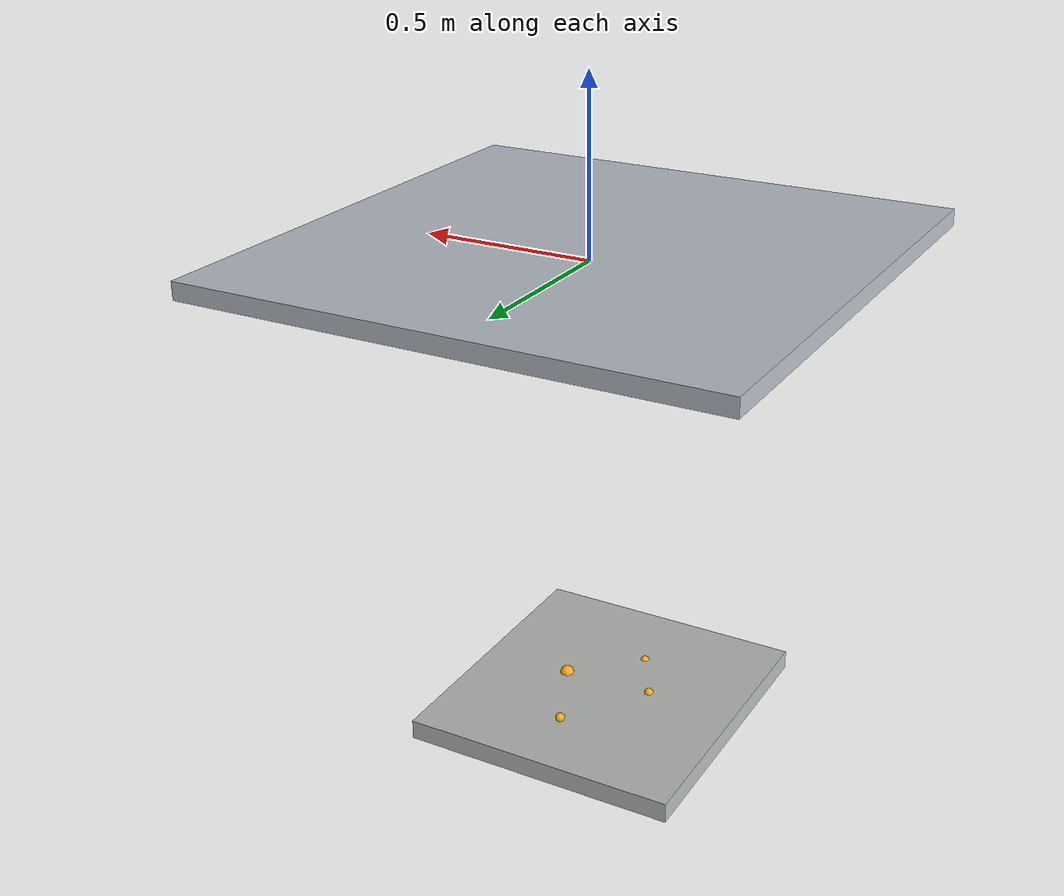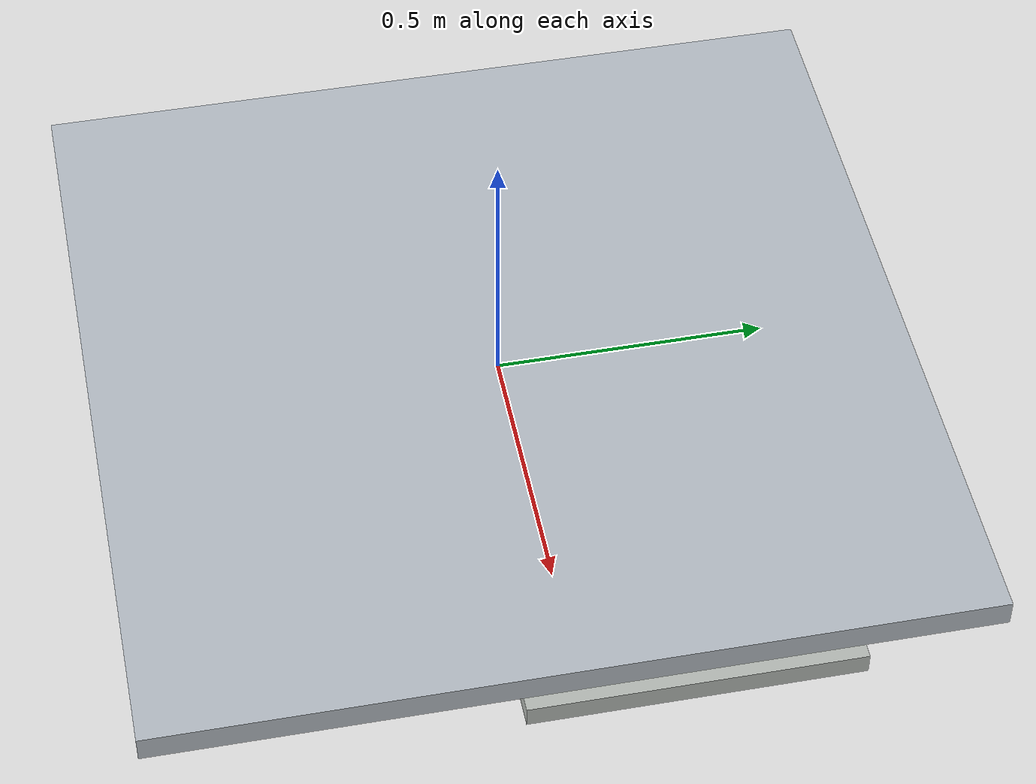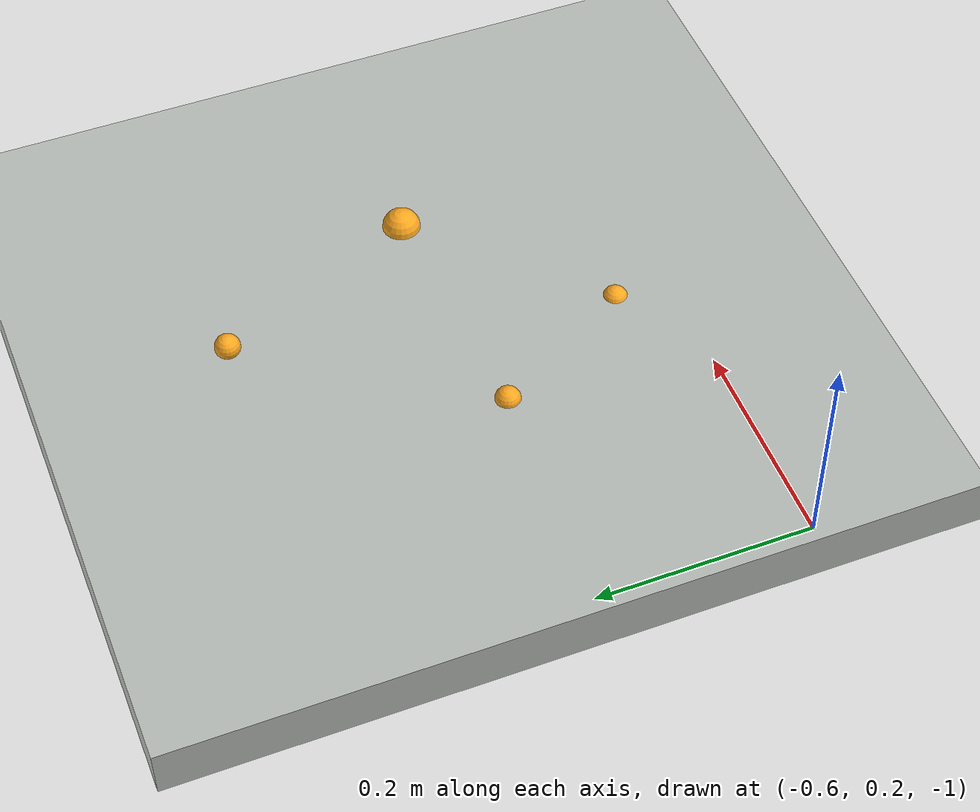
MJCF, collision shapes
<mujoco model="ceiling_ur5e_hande_estimated_table">
  <compiler angle="radian" coordinate="local" autolimits="true" />
  <option timestep="0.002" gravity="0 0 -9.81" />
  <visual>
    <headlight ambient="0.55 0.55 0.55" diffuse="0.45 0.45 0.45" specular="0.12 0.12 0.12" />
    <rgba haze="1 1 1 1" />
  </visual>
  <statistic center="-0.271848 0.414837 -0.492721" extent="1.8" />
  <asset>
    <texture name="white_skybox" type="skybox" builtin="flat" rgb1="1 1 1" rgb2="1 1 1" width="32" height="32" />
    <material name="ceiling_mat" rgba="0.720000 0.750000 0.780000 1.000000" />
    <material name="table_mat" rgba="0.720000 0.740000 0.720000 1.000000" />
    <material name="robot_mat" rgba="0.220000 0.350000 0.620000 1.000000" />
    <material name="joint_mat" rgba="0.080000 0.100000 0.120000 1.000000" />
    <material name="hande_mat" rgba="0.080000 0.080000 0.080000 1.000000" />
    <material name="hande_body_mat" rgba="0.090000 0.100000 0.110000 1.000000" />
    <material name="hande_finger_mat" rgba="0.180000 0.180000 0.170000 1.000000" />
    <material name="hande_metal_mat" rgba="0.580000 0.600000 0.620000 1.000000" />
    <material name="contact_mat" rgba="1.000000 0.660000 0.120000 1.000000" />
    <material name="tray_mat" rgba="0.000000 0.580000 0.220000 1.000000" />
    <mesh name="ti_tray_part_00" file="../assets/ti_tray/mujoco_parts/ti_tray_part_00.obj" inertia="shell" />
    <mesh name="ti_tray_part_01" file="../assets/ti_tray/mujoco_parts/ti_tray_part_01.obj" inertia="shell" />
    <mesh name="ti_tray_part_02" file="../assets/ti_tray/mujoco_parts/ti_tray_part_02.obj" inertia="shell" />
    <mesh name="ti_tray_part_03" file="../assets/ti_tray/mujoco_parts/ti_tray_part_03.obj" inertia="shell" />
    <mesh name="ti_tray_part_04" file="../assets/ti_tray/mujoco_parts/ti_tray_part_04.obj" inertia="shell" />
    <mesh name="ti_tray_part_05" file="../assets/ti_tray/mujoco_parts/ti_tray_part_05.obj" inertia="shell" />
    <mesh name="ti_tray_part_06" file="../assets/ti_tray/mujoco_parts/ti_tray_part_06.obj" inertia="shell" />
    <mesh name="ti_tray_part_07" file="../assets/ti_tray/mujoco_parts/ti_tray_part_07.obj" inertia="shell" />
    <mesh name="ti_tray_part_08" file="../assets/ti_tray/mujoco_parts/ti_tray_part_08.obj" inertia="shell" />
    <mesh name="ti_tray_part_09" file="../assets/ti_tray/mujoco_parts/ti_tray_part_09.obj" inertia="shell" />
    <mesh name="ti_tray_part_10" file="../assets/ti_tray/mujoco_parts/ti_tray_part_10.obj" inertia="shell" />
    <mesh name="ti_tray_part_11" file="../assets/ti_tray/mujoco_parts/ti_tray_part_11.obj" inertia="shell" />
    <mesh name="ti_tray_part_12" file="../assets/ti_tray/mujoco_parts/ti_tray_part_12.obj" inertia="shell" />
    <mesh name="ti_tray_part_13" file="../assets/ti_tray/mujoco_parts/ti_tray_part_13.obj" inertia="shell" />
    <mesh name="ti_tray_part_14" file="../assets/ti_tray/mujoco_parts/ti_tray_part_14.obj" inertia="shell" />
    <mesh name="ti_tray_part_15" file="../assets/ti_tray/mujoco_parts/ti_tray_part_15.obj" inertia="shell" />
    <mesh name="ti_tray_part_16" file="../assets/ti_tray/mujoco_parts/ti_tray_part_16.obj" inertia="shell" />
    <mesh name="ti_tray_part_17" file="../assets/ti_tray/mujoco_parts/ti_tray_part_17.obj" inertia="shell" />
    <mesh name="ti_tray_part_18" file="../assets/ti_tray/mujoco_parts/ti_tray_part_18.obj" inertia="shell" />
    <mesh name="ti_tray_part_19" file="../assets/ti_tray/mujoco_parts/ti_tray_part_19.obj" inertia="shell" />
    <mesh name="ti_tray_part_20" file="../assets/ti_tray/mujoco_parts/ti_tray_part_20.obj" inertia="shell" />
    <mesh name="ti_tray_part_21" file="../assets/ti_tray/mujoco_parts/ti_tray_part_21.obj" inertia="shell" />
    <mesh name="ti_tray_part_22" file="../assets/ti_tray/mujoco_parts/ti_tray_part_22.obj" inertia="shell" />
    <mesh name="ti_tray_part_23" file="../assets/ti_tray/mujoco_parts/ti_tray_part_23.obj" inertia="shell" />
    <mesh name="ti_tray_part_24" file="../assets/ti_tray/mujoco_parts/ti_tray_part_24.obj" inertia="shell" />
    <mesh name="hande_io_coupler" file="../assets/robotiq_hande_description/meshes/io_coupler.obj" />
    <mesh name="hande_body" file="../assets/robotiq_hande_description/meshes/hande.obj" />
    <mesh name="hande_finger" file="../assets/robotiq_hande_description/meshes/finger.obj" />
    <material name="black" rgba="0.033000 0.033000 0.033000 1.000000" />
    <material name="jointgray" rgba="0.278000 0.278000 0.278000 1.000000" />
    <material name="linkgray" rgba="0.820000 0.820000 0.820000 1.000000" />
    <material name="urblue" rgba="0.490000 0.678000 0.800000 1.000000" />
    <mesh name="base_0" file="../assets/universal_robots_ur5e/assets/base_0.obj" />
    <mesh name="base_1" file="../assets/universal_robots_ur5e/assets/base_1.obj" />
    <mesh name="shoulder_0" file="../assets/universal_robots_ur5e/assets/shoulder_0.obj" />
    <mesh name="shoulder_1" file="../assets/universal_robots_ur5e/assets/shoulder_1.obj" />
    <mesh name="shoulder_2" file="../assets/universal_robots_ur5e/assets/shoulder_2.obj" />
    <mesh name="upperarm_0" file="../assets/universal_robots_ur5e/assets/upperarm_0.obj" />
    <mesh name="upperarm_1" file="../assets/universal_robots_ur5e/assets/upperarm_1.obj" />
    <mesh name="upperarm_2" file="../assets/universal_robots_ur5e/assets/upperarm_2.obj" />
    <mesh name="upperarm_3" file="../assets/universal_robots_ur5e/assets/upperarm_3.obj" />
    <mesh name="forearm_0" file="../assets/universal_robots_ur5e/assets/forearm_0.obj" />
    <mesh name="forearm_1" file="../assets/universal_robots_ur5e/assets/forearm_1.obj" />
    <mesh name="forearm_2" file="../assets/universal_robots_ur5e/assets/forearm_2.obj" />
    <mesh name="forearm_3" file="../assets/universal_robots_ur5e/assets/forearm_3.obj" />
    <mesh name="wrist1_0" file="../assets/universal_robots_ur5e/assets/wrist1_0.obj" />
    <mesh name="wrist1_1" file="../assets/universal_robots_ur5e/assets/wrist1_1.obj" />
    <mesh name="wrist1_2" file="../assets/universal_robots_ur5e/assets/wrist1_2.obj" />
    <mesh name="wrist2_0" file="../assets/universal_robots_ur5e/assets/wrist2_0.obj" />
    <mesh name="wrist2_1" file="../assets/universal_robots_ur5e/assets/wrist2_1.obj" />
    <mesh name="wrist2_2" file="../assets/universal_robots_ur5e/assets/wrist2_2.obj" />
    <mesh name="wrist3" file="../assets/universal_robots_ur5e/assets/wrist3.obj" />
  </asset>
  <worldbody>
    <light name="key" pos="0 -1 1.2" dir="0 1 -1" />
    <camera name="overview" pos="1.2 -1.5 0.6" xyaxes="0.78 0.62 0 -0.24 0.30 0.92" />
    <!--Plane centroid and normals are expressed in MuJoCo world coordinates. The table top uses the fitted centroid but is flattened to the robot-base plane.-->
    <!--centroid=-0.271848 0.414837 -0.985442 fitted_normal=0.001137 -0.028085 0.999605 table_normal=0.000000 0.000000 1.000000 rms_error_m=0.000198791-->
    <geom name="ceiling_panel" type="box" pos="0.000000 0.000000 0.025000" quat="1.000000 0.000000 0.000000 0.000000" size="0.750000 0.750000 0.025000" material="ceiling_mat" contype="0" conaffinity="0" />
    <geom name="ceiling_mount" type="cylinder" pos="0 0 -0.035" size="0.085 0.035" material="joint_mat" contype="0" conaffinity="0" />
    <geom name="estimated_table" type="box" pos="-0.271848 0.414837 -1.010442" quat="1.000000 0.000000 0.000000 0.000000" size="0.350000 0.368783 0.025000" material="table_mat" rgba="0.720000 0.740000 0.720000 1.000000" />
    <geom name="ti_tray_00" type="mesh" mesh="ti_tray_part_00" pos="-0.152840 0.420550 -0.993968" quat="1.000000 0.000000 0.000000 0.000000" material="tray_mat" rgba="0.000000 0.580000 0.220000 1.000000" contype="0" conaffinity="0" />
    <geom name="ti_tray_01" type="mesh" mesh="ti_tray_part_01" pos="-0.152840 0.420550 -0.993968" quat="1.000000 0.000000 0.000000 0.000000" material="tray_mat" rgba="0.000000 0.580000 0.220000 1.000000" contype="0" conaffinity="0" />
    <geom name="ti_tray_02" type="mesh" mesh="ti_tray_part_02" pos="-0.152840 0.420550 -0.993968" quat="1.000000 0.000000 0.000000 0.000000" material="tray_mat" rgba="0.000000 0.580000 0.220000 1.000000" contype="0" conaffinity="0" />
    <geom name="ti_tray_03" type="mesh" mesh="ti_tray_part_03" pos="-0.152840 0.420550 -0.993968" quat="1.000000 0.000000 0.000000 0.000000" material="tray_mat" rgba="0.000000 0.580000 0.220000 1.000000" contype="0" conaffinity="0" />
    <geom name="ti_tray_04" type="mesh" mesh="ti_tray_part_04" pos="-0.152840 0.420550 -0.993968" quat="1.000000 0.000000 0.000000 0.000000" material="tray_mat" rgba="0.000000 0.580000 0.220000 1.000000" contype="0" conaffinity="0" />
    <geom name="ti_tray_05" type="mesh" mesh="ti_tray_part_05" pos="-0.152840 0.420550 -0.993968" quat="1.000000 0.000000 0.000000 0.000000" material="tray_mat" rgba="0.000000 0.580000 0.220000 1.000000" contype="0" conaffinity="0" />
    <geom name="ti_tray_06" type="mesh" mesh="ti_tray_part_06" pos="-0.152840 0.420550 -0.993968" quat="1.000000 0.000000 0.000000 0.000000" material="tray_mat" rgba="0.000000 0.580000 0.220000 1.000000" contype="0" conaffinity="0" />
    <geom name="ti_tray_07" type="mesh" mesh="ti_tray_part_07" pos="-0.152840 0.420550 -0.993968" quat="1.000000 0.000000 0.000000 0.000000" material="tray_mat" rgba="0.000000 0.580000 0.220000 1.000000" contype="0" conaffinity="0" />
    <geom name="ti_tray_08" type="mesh" mesh="ti_tray_part_08" pos="-0.152840 0.420550 -0.993968" quat="1.000000 0.000000 0.000000 0.000000" material="tray_mat" rgba="0.000000 0.580000 0.220000 1.000000" contype="0" conaffinity="0" />
    <geom name="ti_tray_09" type="mesh" mesh="ti_tray_part_09" pos="-0.152840 0.420550 -0.993968" quat="1.000000 0.000000 0.000000 0.000000" material="tray_mat" rgba="0.000000 0.580000 0.220000 1.000000" contype="0" conaffinity="0" />
    <geom name="ti_tray_10" type="mesh" mesh="ti_tray_part_10" pos="-0.152840 0.420550 -0.993968" quat="1.000000 0.000000 0.000000 0.000000" material="tray_mat" rgba="0.000000 0.580000 0.220000 1.000000" contype="0" conaffinity="0" />
    <geom name="ti_tray_11" type="mesh" mesh="ti_tray_part_11" pos="-0.152840 0.420550 -0.993968" quat="1.000000 0.000000 0.000000 0.000000" material="tray_mat" rgba="0.000000 0.580000 0.220000 1.000000" contype="0" conaffinity="0" />
    <geom name="ti_tray_12" type="mesh" mesh="ti_tray_part_12" pos="-0.152840 0.420550 -0.993968" quat="1.000000 0.000000 0.000000 0.000000" material="tray_mat" rgba="0.000000 0.580000 0.220000 1.000000" contype="0" conaffinity="0" />
    <geom name="ti_tray_13" type="mesh" mesh="ti_tray_part_13" pos="-0.152840 0.420550 -0.993968" quat="1.000000 0.000000 0.000000 0.000000" material="tray_mat" rgba="0.000000 0.580000 0.220000 1.000000" contype="0" conaffinity="0" />
    <geom name="ti_tray_14" type="mesh" mesh="ti_tray_part_14" pos="-0.152840 0.420550 -0.993968" quat="1.000000 0.000000 0.000000 0.000000" material="tray_mat" rgba="0.000000 0.580000 0.220000 1.000000" contype="0" conaffinity="0" />
    <geom name="ti_tray_15" type="mesh" mesh="ti_tray_part_15" pos="-0.152840 0.420550 -0.993968" quat="1.000000 0.000000 0.000000 0.000000" material="tray_mat" rgba="0.000000 0.580000 0.220000 1.000000" contype="0" conaffinity="0" />
    <geom name="ti_tray_16" type="mesh" mesh="ti_tray_part_16" pos="-0.152840 0.420550 -0.993968" quat="1.000000 0.000000 0.000000 0.000000" material="tray_mat" rgba="0.000000 0.580000 0.220000 1.000000" contype="0" conaffinity="0" />
    <geom name="ti_tray_17" type="mesh" mesh="ti_tray_part_17" pos="-0.152840 0.420550 -0.993968" quat="1.000000 0.000000 0.000000 0.000000" material="tray_mat" rgba="0.000000 0.580000 0.220000 1.000000" contype="0" conaffinity="0" />
    <geom name="ti_tray_18" type="mesh" mesh="ti_tray_part_18" pos="-0.152840 0.420550 -0.993968" quat="1.000000 0.000000 0.000000 0.000000" material="tray_mat" rgba="0.000000 0.580000 0.220000 1.000000" contype="0" conaffinity="0" />
    <geom name="ti_tray_19" type="mesh" mesh="ti_tray_part_19" pos="-0.152840 0.420550 -0.993968" quat="1.000000 0.000000 0.000000 0.000000" material="tray_mat" rgba="0.000000 0.580000 0.220000 1.000000" contype="0" conaffinity="0" />
    <geom name="ti_tray_20" type="mesh" mesh="ti_tray_part_20" pos="-0.152840 0.420550 -0.993968" quat="1.000000 0.000000 0.000000 0.000000" material="tray_mat" rgba="0.000000 0.580000 0.220000 1.000000" contype="0" conaffinity="0" />
    <geom name="ti_tray_21" type="mesh" mesh="ti_tray_part_21" pos="-0.152840 0.420550 -0.993968" quat="1.000000 0.000000 0.000000 0.000000" material="tray_mat" rgba="0.000000 0.580000 0.220000 1.000000" contype="0" conaffinity="0" />
    <geom name="ti_tray_22" type="mesh" mesh="ti_tray_part_22" pos="-0.152840 0.420550 -0.993968" quat="1.000000 0.000000 0.000000 0.000000" material="tray_mat" rgba="0.000000 0.580000 0.220000 1.000000" contype="0" conaffinity="0" />
    <geom name="ti_tray_23" type="mesh" mesh="ti_tray_part_23" pos="-0.152840 0.420550 -0.993968" quat="1.000000 0.000000 0.000000 0.000000" material="tray_mat" rgba="0.000000 0.580000 0.220000 1.000000" contype="0" conaffinity="0" />
    <geom name="ti_tray_24" type="mesh" mesh="ti_tray_part_24" pos="-0.152840 0.420550 -0.993968" quat="1.000000 0.000000 0.000000 0.000000" material="tray_mat" rgba="0.000000 0.580000 0.220000 1.000000" contype="0" conaffinity="0" />
    <geom name="ur5e_mesh_00_base_0" type="mesh" mesh="base_0" pos="0.000000 0.000000 0.000000" quat="0.000000 1.000000 0.000000 0.000000" contype="0" conaffinity="0" group="2" material="black" />
    <geom name="ur5e_mesh_01_base_1" type="mesh" mesh="base_1" pos="0.000000 0.000000 0.000000" quat="0.000000 1.000000 0.000000 0.000000" contype="0" conaffinity="0" group="2" material="jointgray" />
    <geom name="ur5e_mesh_02_shoulder_0" type="mesh" mesh="shoulder_0" pos="0.000000 -0.000000 -0.163000" quat="0.000000 0.429566 0.903036 -0.000000" contype="0" conaffinity="0" group="2" material="urblue" />
    <geom name="ur5e_mesh_03_shoulder_1" type="mesh" mesh="shoulder_1" pos="0.000000 -0.000000 -0.163000" quat="0.000000 0.429566 0.903036 -0.000000" contype="0" conaffinity="0" group="2" material="black" />
    <geom name="ur5e_mesh_04_shoulder_2" type="mesh" mesh="shoulder_2" pos="0.000000 -0.000000 -0.163000" quat="0.000000 0.429566 0.903036 -0.000000" contype="0" conaffinity="0" group="2" material="jointgray" />
    <geom name="ur5e_mesh_06_upperarm_0" type="mesh" mesh="upperarm_0" pos="0.107064 0.087071 -0.163000" quat="-0.472238 0.366147 0.769717 0.224639" contype="0" conaffinity="0" group="2" material="linkgray" />
    <geom name="ur5e_mesh_07_upperarm_1" type="mesh" mesh="upperarm_1" pos="0.107064 0.087071 -0.163000" quat="-0.472238 0.366147 0.769717 0.224639" contype="0" conaffinity="0" group="2" material="black" />
    <geom name="ur5e_mesh_08_upperarm_2" type="mesh" mesh="upperarm_2" pos="0.107064 0.087071 -0.163000" quat="-0.472238 0.366147 0.769717 0.224639" contype="0" conaffinity="0" group="2" material="jointgray" />
    <geom name="ur5e_mesh_09_upperarm_3" type="mesh" mesh="upperarm_3" pos="0.107064 0.087071 -0.163000" quat="-0.472238 0.366147 0.769717 0.224639" contype="0" conaffinity="0" group="2" material="urblue" />
    <geom name="ur5e_mesh_12_forearm_0" type="mesh" mesh="forearm_0" pos="-0.233622 0.298361 -0.355549" quat="0.091571 0.427351 0.898381 -0.043559" contype="0" conaffinity="0" group="2" material="urblue" />
    <geom name="ur5e_mesh_13_forearm_1" type="mesh" mesh="forearm_1" pos="-0.233622 0.298361 -0.355549" quat="0.091571 0.427351 0.898381 -0.043559" contype="0" conaffinity="0" group="2" material="linkgray" />
    <geom name="ur5e_mesh_14_forearm_2" type="mesh" mesh="forearm_2" pos="-0.233622 0.298361 -0.355549" quat="0.091571 0.427351 0.898381 -0.043559" contype="0" conaffinity="0" group="2" material="black" />
    <geom name="ur5e_mesh_15_forearm_3" type="mesh" mesh="forearm_3" pos="-0.233622 0.298361 -0.355549" quat="0.091571 0.427351 0.898381 -0.043559" contype="0" conaffinity="0" group="2" material="jointgray" />
    <geom name="ur5e_mesh_18_wrist1_0" type="mesh" mesh="wrist1_0" pos="-0.183720 0.237001 -0.739488" quat="0.655256 -0.295585 -0.621380 -0.311699" contype="0" conaffinity="0" group="2" material="black" />
    <geom name="ur5e_mesh_19_wrist1_1" type="mesh" mesh="wrist1_1" pos="-0.183720 0.237001 -0.739488" quat="0.655256 -0.295585 -0.621380 -0.311699" contype="0" conaffinity="0" group="2" material="urblue" />
    <geom name="ur5e_mesh_20_wrist1_2" type="mesh" mesh="wrist1_2" pos="-0.183720 0.237001 -0.739488" quat="0.655256 -0.295585 -0.621380 -0.311699" contype="0" conaffinity="0" group="2" material="jointgray" />
    <geom name="ur5e_mesh_22_wrist2_0" type="mesh" mesh="wrist2_0" pos="-0.085190 0.317131 -0.739488" quat="0.686309 -0.645882 -0.237318 0.235578" contype="0" conaffinity="0" group="2" material="black" />
    <geom name="ur5e_mesh_23_wrist2_1" type="mesh" mesh="wrist2_1" pos="-0.085190 0.317131 -0.739488" quat="0.686309 -0.645882 -0.237318 0.235578" contype="0" conaffinity="0" group="2" material="urblue" />
    <geom name="ur5e_mesh_24_wrist2_2" type="mesh" mesh="wrist2_2" pos="-0.085190 0.317131 -0.739488" quat="0.686309 -0.645882 -0.237318 0.235578" contype="0" conaffinity="0" group="2" material="jointgray" />
    <geom name="ur5e_mesh_27_wrist3" type="mesh" mesh="wrist3" pos="-0.148196 0.394604 -0.734184" quat="0.572825 -0.535128 -0.446331 0.431623" contype="0" conaffinity="0" group="2" material="linkgray" />
    <geom name="hande_io_coupler" type="mesh" mesh="hande_io_coupler" pos="-0.149876 0.400072 -0.834021" quat="-0.027865 0.783332 0.620964 0.004414" material="hande_metal_mat" contype="0" conaffinity="0" group="2" />
    <geom name="hande_body" type="mesh" mesh="hande_body" pos="-0.150181 0.400613 -0.845003" quat="-0.027865 0.783332 0.620964 0.004414" material="hande_body_mat" contype="0" conaffinity="0" group="2" />
    <geom name="hande_left_finger" type="mesh" mesh="hande_finger" pos="-0.148347 0.424929 -0.943015" quat="-0.027865 0.783332 0.620964 0.004414" material="hande_finger_mat" contype="0" conaffinity="0" group="2" />
    <geom name="hande_right_finger" type="mesh" mesh="hande_finger" pos="-0.157497 0.386025 -0.944676" quat="0.004414 -0.620964 0.783332 0.027865" material="hande_finger_mat" contype="0" conaffinity="0" group="2" />
    <geom name="contact_marker_1" type="sphere" pos="-0.154090 0.407550 -0.985960" size="0.018" material="contact_mat" contype="0" conaffinity="0" />
    <geom name="contact_marker_2" type="sphere" pos="-0.384670 0.392030 -0.986170" size="0.012" material="contact_mat" contype="0" conaffinity="0" />
    <geom name="contact_marker_3" type="sphere" pos="-0.306300 0.256150 -0.989630" size="0.012" material="contact_mat" contype="0" conaffinity="0" />
    <geom name="contact_marker_4" type="sphere" pos="-0.242330 0.603620 -0.980010" size="0.012" material="contact_mat" contype="0" conaffinity="0" />
  </worldbody>
</mujoco>
